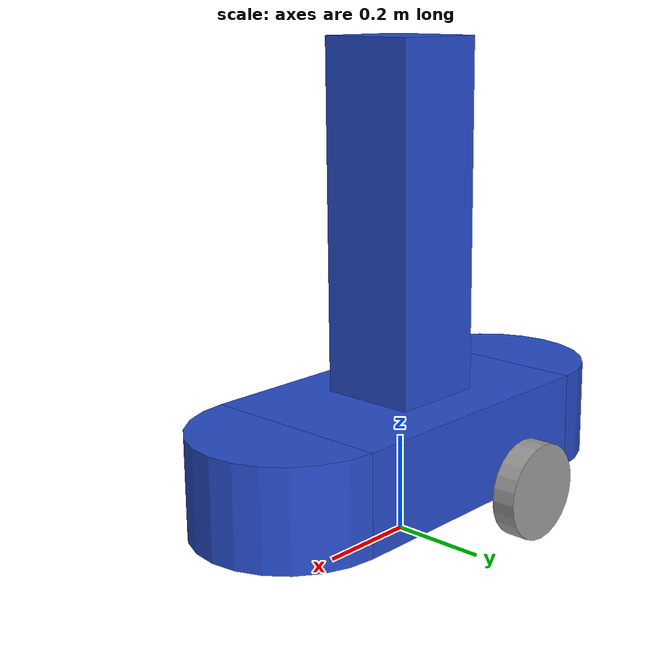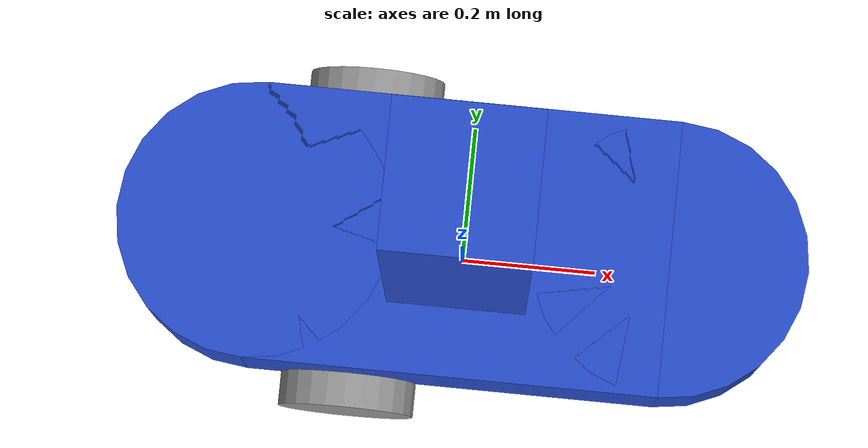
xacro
<?xml version="1.0"?>
<robot xmlns:xacro="http://www.ros.org/wiki/xacro">

    <!-- Robot Base-->
    <xacro:property name="base_length" value="0.6" />
    <xacro:property name="base_width" value="0.4" />
    <xacro:property name="base_height" value="0.2" />
    <xacro:property name="wheel_radius" value="0.1" />
    <xacro:property name="wheel_length" value="0.05" />

    <!-- tower-->
    <xacro:property name="tower_length" value="0.2" />
    <xacro:property name="tower_width" value="0.2" />
    <xacro:property name="tower_height" value="0.7" />

    <link name="base_footprint" />

    <link name="base_link">
        <visual>
            <geometry>
                <box size="${base_length} ${base_width} ${base_height}" />
            </geometry>
            <origin xyz="0 0 ${base_height / 2.0}" rpy="0 0 0" />
            <material name="blue" />
        </visual>
        <collision>
            <geometry>
                <box size="${base_length} ${base_width} ${base_height}" />
            </geometry>
            <origin xyz="0 0 ${base_height / 2.0}" rpy="0 0 0" />
        </collision>
        <xacro:box_inertia m="5.0" l="${2*base_length}" w="${2*base_width}" h="${2*base_height}"
                           xyz="0 0 ${base_height / 2.0}" rpy="0 0 0" />
    </link>

    <link name="front_bumper_link">
        <visual>
            <geometry>
                <cylinder radius="${base_width/2}" length="${base_height}"/>
            </geometry>
            <origin xyz="0 0 ${base_height / 2.0}" rpy="0 0 0" />
            <material name="blue" />
        </visual>
        <collision>
            <geometry>
                <box size="${base_width} ${base_width} ${base_height}" />
            </geometry>
            <origin xyz="0 0 ${base_height / 2.0}" rpy="0 0 0" />
        </collision>
        <xacro:cylinder_inertia m="5.0" r="${base_width/2}" h="${base_width}"
                           xyz="0 0 ${base_width / 2.0}" rpy="0 0 0" />
    </link>

    <link name="back_bumper_link">
        <visual>
            <geometry>
                <cylinder radius="${base_width/2}" length="${base_height}"/>
            </geometry>
            <origin xyz="0 0 ${base_height / 2.0}" rpy="0 0 0" />
            <material name="blue" />
        </visual>
        <collision>
            <geometry>
                <box size="${base_width} ${base_width} ${base_height}" />
            </geometry>
            <origin xyz="0 0 ${base_height / 2.0}" rpy="0 0 0" />
        </collision>
        <xacro:cylinder_inertia m="5.0" r="${base_width/2}" h="${base_width}"
                           xyz="0 0 ${base_width / 2.0}" rpy="0 0 0" />
    </link>

    <link name="tower_link">
        <visual>
            <geometry>
                <box size="${tower_length} ${tower_width} ${tower_height}" />
            </geometry>
            <origin xyz="0 0 ${tower_height/2.0}" rpy="0 0 0" />
            <material name="blue" />
        </visual>
        <collision>
            <geometry>
                <box size="${tower_length} ${tower_width} ${tower_height}" />
            </geometry>
            <origin xyz="0 0 ${tower_height}" rpy="0 0 0" />
        </collision>
        <xacro:box_inertia m="5.0" l="${2*tower_length}" w="${2*tower_width}" h="${2*tower_height}"
                           xyz="0 0 ${tower_height / 2.0}" rpy="0 0 0" />
    </link>

    <xacro:macro name="wheel_link" params="prefix">
        <link name="${prefix}_wheel_link">
            <visual>
                <geometry>
                    <cylinder radius="${wheel_radius}" length="${wheel_length}" />
                </geometry>
                <origin xyz="0 0 0" rpy="${pi / 2.0} 0 0" />
                <material name="grey" />
            </visual>
            <collision>
                <geometry>
                    <cylinder radius="${wheel_radius}" length="${wheel_length}" />
                </geometry>
                <origin xyz="0 0 0" rpy="${pi / 2.0} 0 0" />
            </collision>
            <xacro:cylinder_inertia m="1.0" r="${2*wheel_radius}" h="${2*wheel_length}"
                                    xyz="0 0 0" rpy="${pi / 2.0} 0 0" />
        </link>
    </xacro:macro>

    <xacro:wheel_link prefix="right" />
    <xacro:wheel_link prefix="left" />

    <link name="caster_wheel_link">
        <visual>
            <geometry>
                <sphere radius="${wheel_radius / 2.0}" />
            </geometry>
            <origin xyz="0 0 0" rpy="0 0 0" />
            <material name="grey" />
        </visual>
        <collision>
            <geometry>
                <sphere radius="${wheel_radius / 2.0}" />
            </geometry>
            <origin xyz="0 0 0" rpy="0 0 0" />
        </collision>
        <xacro:sphere_inertia m="0.5" r="${2*wheel_radius / 2.0}"
                              xyz="0 0 0" rpy="0 0 0" />
    </link>

    <joint name="front_bumper_joint" type="fixed">
        <parent link="base_link" />
        <child link="front_bumper_link" />
        <origin xyz="${base_length / 2.0} 0 0" rpy="0 0 0" />
    </joint>

    <joint name="back_bumper_joint" type="fixed">
        <parent link="base_link" />
        <child link="back_bumper_link" />
        <origin xyz="${-base_length / 2.0} 0 0" rpy="0 0 0" />
    </joint>

    <joint name="base_joint" type="fixed">
        <parent link="base_footprint" />
        <child link="base_link" />
        <origin xyz="0 0 ${wheel_radius}" rpy="0 0 0"/>
    </joint>

    <joint name="tower_joint" type="fixed">
        <parent link="base_link" />
        <child link="tower_link" />
        <origin xyz="0 0 ${base_height}" rpy="0 0 0" />
    </joint>

    <joint name="base_right_wheel_joint" type="continuous">
        <parent link="base_link" />
        <child link="right_wheel_link" />
        <origin xyz="${-base_length / 4.0} ${-(base_width + wheel_length) / 2.0} 0" rpy="0 0 0" />
        <axis xyz="0 1 0" />
    </joint>

    <joint name="base_left_wheel_joint" type="continuous">
        <parent link="base_link" />
        <child link="left_wheel_link" />
        <origin xyz="${-base_length / 4.0} ${(base_width + wheel_length) / 2.0} 0" rpy="0 0 0" />
        <axis xyz="0 1 0" />
    </joint>

    <joint name="base_caster_wheel_joint" type="fixed">
        <parent link="base_link" />
        <child link="caster_wheel_link" />
        <origin xyz="${base_length / 3.0} 0 ${-wheel_radius / 2.0}" rpy="0 0 0" />
    </joint>

</robot>
